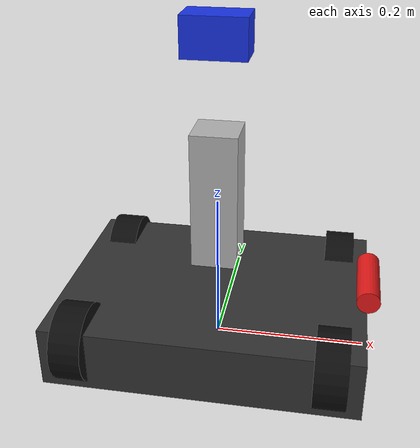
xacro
<?xml version="1.0"?>
<robot xmlns:xacro="http://ros.org/wiki/xacro" name="tutorial_rover">

  <xacro:property name="base_length" value="0.40" />
  <xacro:property name="base_width" value="0.30" />
  <xacro:property name="base_height" value="0.08" />
  <xacro:property name="wheel_radius" value="0.05" />
  <xacro:property name="wheel_width" value="0.04" />
  <xacro:property name="wheel_x" value="0.16" />
  <xacro:property name="wheel_y" value="0.12" />
  <xacro:property name="wheel_z" value="${wheel_radius}" />
  <xacro:property name="mast_height" value="0.18" />
  <xacro:property name="mast_width" value="0.06" />
  <xacro:property name="mast_depth" value="0.06" />
  <xacro:property name="camera_width" value="0.08" />
  <xacro:property name="camera_height" value="0.05" />
  <xacro:property name="camera_depth" value="0.05" />

  <link name="base_link">
    <visual>
      <origin xyz="0 0 ${base_height/2}" rpy="0 0 0" />
      <geometry>
        <box size="${base_length} ${base_width} ${base_height}" />
      </geometry>
      <material name="dark_gray">
        <color rgba="0.2 0.2 0.2 1.0" />
      </material>
    </visual>
    <collision>
      <origin xyz="0 0 ${base_height/2}" rpy="0 0 0" />
      <geometry>
        <box size="${base_length} ${base_width} ${base_height}" />
      </geometry>
    </collision>
  </link>

  <xacro:macro name="wheel" params="name x y z">
    <link name="${name}">
      <visual>
        <origin xyz="0 0 0" rpy="0 1.5708 0" />
        <geometry>
          <cylinder radius="${wheel_radius}" length="${wheel_width}" />
        </geometry>
        <material name="black">
          <color rgba="0.05 0.05 0.05 1.0" />
        </material>
      </visual>
      <collision>
        <origin xyz="0 0 0" rpy="0 1.5708 0" />
        <geometry>
          <cylinder radius="${wheel_radius}" length="${wheel_width}" />
        </geometry>
      </collision>
    </link>

    <joint name="${name}_joint" type="continuous">
      <parent link="base_link" />
      <child link="${name}" />
      <origin xyz="${x} ${y} ${z}" rpy="0 0 0" />
      <axis xyz="0 1 0" />
    </joint>
  </xacro:macro>

  <xacro:wheel name="wheel_front_left" x="${wheel_x}" y="${wheel_y}" z="${wheel_z}" />
  <xacro:wheel name="wheel_front_right" x="${wheel_x}" y="-${wheel_y}" z="${wheel_z}" />
  <xacro:wheel name="wheel_rear_left" x="-${wheel_x}" y="${wheel_y}" z="${wheel_z}" />
  <xacro:wheel name="wheel_rear_right" x="-${wheel_x}" y="-${wheel_y}" z="${wheel_z}" />

  <link name="mast_link">
    <visual>
      <origin xyz="0 0 ${mast_height/2 + base_height}" rpy="0 0 0" />
      <geometry>
        <box size="${mast_width} ${mast_depth} ${mast_height}" />
      </geometry>
      <material name="silver">
        <color rgba="0.7 0.7 0.7 1.0" />
      </material>
    </visual>
    <collision>
      <origin xyz="0 0 ${mast_height/2 + base_height}" rpy="0 0 0" />
      <geometry>
        <box size="${mast_width} ${mast_depth} ${mast_height}" />
      </geometry>
    </collision>
  </link>

  <joint name="mast_joint" type="fixed">
    <parent link="base_link" />
    <child link="mast_link" />
    <origin xyz="0 0 ${base_height/2}" rpy="0 0 0" />
  </joint>

  <link name="camera_link">
    <visual>
      <origin xyz="0 0 ${mast_height + base_height + camera_height/2}" rpy="0 0 0" />
      <geometry>
        <box size="${camera_width} ${camera_depth} ${camera_height}" />
      </geometry>
      <material name="blue">
        <color rgba="0.1 0.2 0.9 1.0" />
      </material>
    </visual>
    <collision>
      <origin xyz="0 0 ${mast_height + base_height + camera_height/2}" rpy="0 0 0" />
      <geometry>
        <box size="${camera_width} ${camera_depth} ${camera_height}" />
      </geometry>
    </collision>
  </link>

  <joint name="camera_joint" type="fixed">
    <parent link="mast_link" />
    <child link="camera_link" />
    <origin xyz="0 0 ${mast_height/2}" rpy="0 0 0" />
  </joint>

  <link name="laser_link">
    <visual>
      <origin xyz="0.10 0 0.02" rpy="1.5708 0 0" />
      <geometry>
        <cylinder radius="0.015" length="0.10" />
      </geometry>
      <material name="red">
        <color rgba="0.9 0.1 0.1 1.0" />
      </material>
    </visual>
    <collision>
      <origin xyz="0.10 0 0.02" rpy="1.5708 0 0" />
      <geometry>
        <cylinder radius="0.015" length="0.10" />
      </geometry>
    </collision>
  </link>

  <joint name="laser_joint" type="fixed">
    <parent link="base_link" />
    <child link="laser_link" />
    <origin xyz="0.10 0 ${base_height}" rpy="0 0 0" />
  </joint>

</robot>
